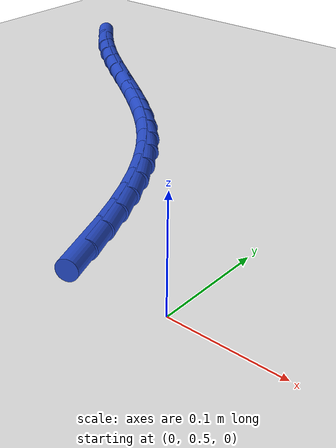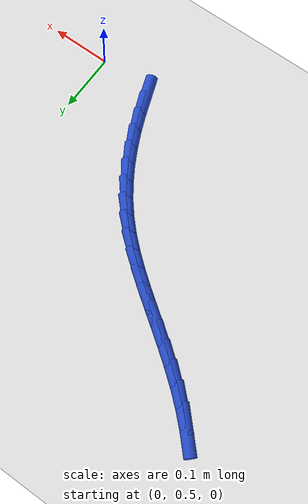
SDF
<sdf version="1.6">
 <world name="default">
  <model name="ground_plane">
   <static>1</static>
   <link name="link">
    <collision name="collision">
     <geometry><plane><normal>0 0 1</normal><size>100 100</size></plane></geometry>
     <surface><friction><ode><mu>100</mu><mu2>50</mu2></ode></friction></surface>
    </collision>
    <visual name="visual">
     <cast_shadows>0</cast_shadows>
     <geometry><plane><normal>0 0 1</normal><size>100 100</size></plane></geometry>
     <material>
      <script><uri>file://media/materials/scripts/gazebo.material</uri><name>Gazebo/WhiteGlow</name></script>
     </material>
    </visual>
   </link>
  </model>
  <model name="line">
   <link name="link_17">
    <pose>-0.0970456791141928 0.5211161115133038 0.01 0 1.57 -1.2266042166525681</pose>
    <collision name="collision">
     <geometry><cylinder><radius>0.01</radius><length>0.08</length></cylinder></geometry>
    </collision>
    <visual name="visual">
     <material>
      <script><name>Gazebo/Blue</name><uri>file://media/materials/scripts/gazebo.material</uri></script>
     </material>
     <geometry><cylinder><radius>0.01</radius><length>0.08</length></cylinder></geometry>
    </visual>
   </link>
   <link name="link_18">
    <pose>-0.10751871682709854 0.5503328185717121 0.01 0 1.57 -1.1853618739446046</pose>
    <collision name="collision">
     <geometry><cylinder><radius>0.01</radius><length>0.08</length></cylinder></geometry>
    </collision>
    <visual name="visual">
     <material>
      <script><name>Gazebo/Blue</name><uri>file://media/materials/scripts/gazebo.material</uri></script>
     </material>
     <geometry><cylinder><radius>0.01</radius><length>0.08</length></cylinder></geometry>
    </visual>
   </link>
   <link name="link_19">
    <pose>-0.11905356765471667 0.5787628345466697 0.01 0 1.57 -1.138169624929014</pose>
    <collision name="collision">
     <geometry><cylinder><radius>0.01</radius><length>0.08</length></cylinder></geometry>
    </collision>
    <visual name="visual">
     <material>
      <script><name>Gazebo/Blue</name><uri>file://media/materials/scripts/gazebo.material</uri></script>
     </material>
     <geometry><cylinder><radius>0.01</radius><length>0.08</length></cylinder></geometry>
    </visual>
   </link>
   <link name="link_20">
    <pose>-0.1317645822670507 0.606287527359907 0.01 0 1.57 -1.0847307844574157</pose>
    <collision name="collision">
     <geometry><cylinder><radius>0.01</radius><length>0.08</length></cylinder></geometry>
    </collision>
    <visual name="visual">
     <material>
      <script><name>Gazebo/Blue</name><uri>file://media/materials/scripts/gazebo.material</uri></script>
     </material>
     <geometry><cylinder><radius>0.01</radius><length>0.08</length></cylinder></geometry>
    </visual>
   </link>
   <link name="link_21">
    <pose>-0.14576611133410394 0.632788264933154 0.01 0 1.57 -1.0248424020184124</pose>
    <collision name="collision">
     <geometry><cylinder><radius>0.01</radius><length>0.08</length></cylinder></geometry>
    </collision>
    <visual name="visual">
     <material>
      <script><name>Gazebo/Blue</name><uri>file://media/materials/scripts/gazebo.material</uri></script>
     </material>
     <geometry><cylinder><radius>0.01</radius><length>0.08</length></cylinder></geometry>
    </visual>
   </link>
   <link name="link_22">
    <pose>-0.16117250552587983 0.6581464151881405 0.01 0 1.57 -0.9584635029178982</pose>
    <collision name="collision">
     <geometry><cylinder><radius>0.01</radius><length>0.08</length></cylinder></geometry>
    </collision>
    <visual name="visual">
     <material>
      <script><name>Gazebo/Blue</name><uri>file://media/materials/scripts/gazebo.material</uri></script>
     </material>
     <geometry><cylinder><radius>0.01</radius><length>0.08</length></cylinder></geometry>
    </visual>
   </link>
   <link name="link_23">
    <pose>-0.17809811551238164 0.6822433460465965 0.01 0 1.57 -0.8857930297932988</pose>
    <collision name="collision">
     <geometry><cylinder><radius>0.01</radius><length>0.08</length></cylinder></geometry>
    </collision>
    <visual name="visual">
     <material>
      <script><name>Gazebo/Blue</name><uri>file://media/materials/scripts/gazebo.material</uri></script>
     </material>
     <geometry><cylinder><radius>0.01</radius><length>0.08</length></cylinder></geometry>
    </visual>
   </link>
   <link name="link_24">
    <pose>-0.1966572919636128 0.7049604254302522 0.01 0 1.57 -0.8095331828342889</pose>
    <collision name="collision">
     <geometry><cylinder><radius>0.01</radius><length>0.08</length></cylinder></geometry>
    </collision>
    <visual name="visual">
     <material>
      <script><name>Gazebo/Blue</name><uri>file://media/materials/scripts/gazebo.material</uri></script>
     </material>
     <geometry><cylinder><radius>0.01</radius><length>0.08</length></cylinder></geometry>
    </visual>
   </link>
   <link name="link_25">
    <pose>-0.21692015393489472 0.7262257660330504 0.01 0 1.57 -0.743160662270411</pose>
    <collision name="collision">
     <geometry><cylinder><radius>0.01</radius><length>0.08</length></cylinder></geometry>
    </collision>
    <visual name="visual">
     <material>
      <script><name>Gazebo/Blue</name><uri>file://media/materials/scripts/gazebo.material</uri></script>
     </material>
     <geometry><cylinder><radius>0.01</radius><length>0.08</length></cylinder></geometry>
    </visual>
   </link>
   <link name="link_26">
    <pose>-0.23869978740385892 0.7462391177648506 0.01 0 1.57 -0.6916082637496144</pose>
    <collision name="collision">
     <geometry><cylinder><radius>0.01</radius><length>0.08</length></cylinder></geometry>
    </collision>
    <visual name="visual">
     <material>
      <script><name>Gazebo/Blue</name><uri>file://media/materials/scripts/gazebo.material</uri></script>
     </material>
     <geometry><cylinder><radius>0.01</radius><length>0.08</length></cylinder></geometry>
    </visual>
   </link>
   <link name="link_27">
    <pose>-0.2617166717778914 0.7652980988376912 0.01 0 1.57 -0.6546581979336694</pose>
    <collision name="collision">
     <geometry><cylinder><radius>0.01</radius><length>0.08</length></cylinder></geometry>
    </collision>
    <visual name="visual">
     <material>
      <script><name>Gazebo/Blue</name><uri>file://media/materials/scripts/gazebo.material</uri></script>
     </material>
     <geometry><cylinder><radius>0.01</radius><length>0.08</length></cylinder></geometry>
    </visual>
   </link>
   <link name="link_28">
    <pose>-0.2856911630514536 0.7837004578886254 0.01 0 1.57 -0.6318254795962253</pose>
    <collision name="collision">
     <geometry><cylinder><radius>0.01</radius><length>0.08</length></cylinder></geometry>
    </collision>
    <visual name="visual">
     <material>
      <script><name>Gazebo/Blue</name><uri>file://media/materials/scripts/gazebo.material</uri></script>
     </material>
     <geometry><cylinder><radius>0.01</radius><length>0.08</length></cylinder></geometry>
    </visual>
   </link>
   <link name="link_29">
    <pose>-0.31034361721900694 0.8017439435547072 0.01 0 1.57 -0.6225967794546875</pose>
    <collision name="collision">
     <geometry><cylinder><radius>0.01</radius><length>0.08</length></cylinder></geometry>
    </collision>
    <visual name="visual">
     <material>
      <script><name>Gazebo/Blue</name><uri>file://media/materials/scripts/gazebo.material</uri></script>
     </material>
     <geometry><cylinder><radius>0.01</radius><length>0.08</length></cylinder></geometry>
    </visual>
   </link>
   <link name="link_30">
    <pose>-0.33539439027501317 0.819726304472991 0.01 0 1.57 -0.6265560743086076</pose>
    <collision name="collision">
     <geometry><cylinder><radius>0.01</radius><length>0.08</length></cylinder></geometry>
    </collision>
    <visual name="visual">
     <material>
      <script><name>Gazebo/Blue</name><uri>file://media/materials/scripts/gazebo.material</uri></script>
     </material>
     <geometry><cylinder><radius>0.01</radius><length>0.08</length></cylinder></geometry>
    </visual>
   </link>
   <link name="link_31">
    <pose>-0.36056383821393345 0.8379452892805298 0.01 0 1.57 -0.6434242848944025</pose>
    <collision name="collision">
     <geometry><cylinder><radius>0.01</radius><length>0.08</length></cylinder></geometry>
    </collision>
    <visual name="visual">
     <material>
      <script><name>Gazebo/Blue</name><uri>file://media/materials/scripts/gazebo.material</uri></script>
     </material>
     <geometry><cylinder><radius>0.01</radius><length>0.08</length></cylinder></geometry>
    </visual>
   </link>
   <link name="link_32">
    <pose>-0.38557231703022954 0.8566986466143776 0.01 0 1.57 -0.6730306936593158</pose>
    <collision name="collision">
     <geometry><cylinder><radius>0.01</radius><length>0.08</length></cylinder></geometry>
    </collision>
    <visual name="visual">
     <material>
      <script><name>Gazebo/Blue</name><uri>file://media/materials/scripts/gazebo.material</uri></script>
     </material>
     <geometry><cylinder><radius>0.01</radius><length>0.08</length></cylinder></geometry>
    </visual>
   </link>
   <link name="link_33">
    <pose>-0.4101401827183626 0.8762841251115882 0.01 0 1.57 -0.715225144321009</pose>
    <collision name="collision">
     <geometry><cylinder><radius>0.01</radius><length>0.08</length></cylinder></geometry>
    </collision>
    <visual name="visual">
     <material>
      <script><name>Gazebo/Blue</name><uri>file://media/materials/scripts/gazebo.material</uri></script>
     </material>
     <geometry><cylinder><radius>0.01</radius><length>0.08</length></cylinder></geometry>
    </visual>
   </link>
   <link name="link_34">
    <pose>-0.4339877912727943 0.8969994734092154 0.01 0 1.57 -0.7697116626267009</pose>
    <collision name="collision">
     <geometry><cylinder><radius>0.01</radius><length>0.08</length></cylinder></geometry>
    </collision>
    <visual name="visual">
     <material>
      <script><name>Gazebo/Blue</name><uri>file://media/materials/scripts/gazebo.material</uri></script>
     </material>
     <geometry><cylinder><radius>0.01</radius><length>0.08</length></cylinder></geometry>
    </visual>
   </link>
   <link name="link_35">
    <pose>-0.45683587634639883 0.9191417591049718 0.01 0 1.57 -0.8173952106771679</pose>
    <collision name="collision">
     <geometry><cylinder><radius>0.01</radius><length>0.08</length></cylinder></geometry>
    </collision>
    <visual name="visual">
     <material>
      <script><name>Gazebo/Blue</name><uri>file://media/materials/scripts/gazebo.material</uri></script>
     </material>
     <geometry><cylinder><radius>0.01</radius><length>0.08</length></cylinder></geometry>
    </visual>
   </link>
  </model>
 </world>
</sdf>
